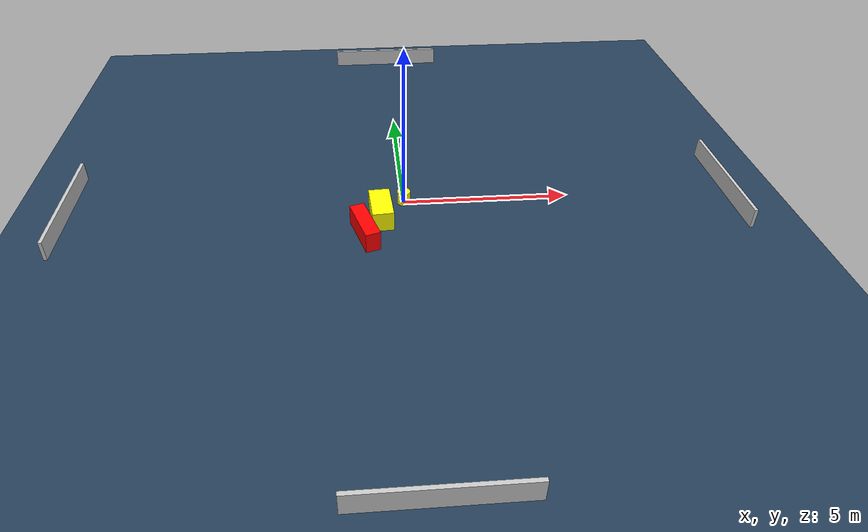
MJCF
<?xml version="1.0" ?>
<mujoco model="generated_environment">
  <option timestep="0.01" integrator="RK4" cone="elliptic"/>
  <default>
    <geom density="1"/>
  </default>
  <asset>
    <texture builtin="gradient" height="3072" name="skybox" rgb1="0.3 0.5 0.7" rgb2="0 0 0" type="skybox" width="512"/>
    <texture builtin="checker" height="300" name="groundplane" rgb1="0.2 0.3 0.4" rgb2="0.1 0.2 0.3" type="2d" width="300"/>
    <material name="groundplane" reflectance="0.2" texrepeat="5 5" texture="groundplane"/>
  </asset>
  <worldbody>
    <light dir="0 0 -1" directional="true" pos="0 0 1.5"/>
    <geom condim="3" friction="0.5 0.005 0.001" material="groundplane" name="floor" pos="0 0 0" size="0 0 0.05" type="plane"/>
    <body name="walls">
      <geom name="wall_1" condim="4" pos="-10.0 0.0 0.3" rgba="0.800000011920929 0.800000011920929 0.800000011920929 1.0" size="0.05 2.0 0.3" type="box"/>
      <geom name="wall_2" condim="4" pos="10.0 0.0 0.3" rgba="0.800000011920929 0.800000011920929 0.800000011920929 1.0" size="0.05 2.0 0.3" type="box"/>
      <geom name="wall_3" condim="4" pos="0.0 -10.0 0.3" rgba="0.800000011920929 0.800000011920929 0.800000011920929 1.0" size="2.0 0.05 0.3" type="box"/>
      <geom name="wall_4" condim="4" pos="0.0 10.0 0.3" rgba="0.800000011920929 0.800000011920929 0.800000011920929 1.0" size="2.0 0.05 0.3" type="box"/>
    </body>
    <body name="robot">
      <joint name="joint_x" type="slide" pos="0 0 0" axis="1 0 0"/>
      <joint name="joint_y" type="slide" pos="0 0 0" axis="0 1 0"/>
      <geom name="robot" type="cylinder" pos="0.0 0.0 0.2" size="0.2 0.2 0.0" mass="5.0" friction="1.0 0.005 0.0001" condim="4" rgba="1.0 1.0 0.0 1.0"/>
    </body>
    <body name="obstacle_1_movable">
      <geom name="obstacle_1_movable" condim="4" pos="-0.7205565410338334 -0.7506007270866462 0.3" euler="0 0 3.4113544792073114" friction="0.0 0.005 0.001" rgba="1.0 1.0 0.0 1.0" size="0.3130262610814085 0.6230755152370646 0.3" type="box" mass="0.1"/>
      <joint type="free"/>
    </body>
    <body name="obstacle_2_static">
      <geom name="obstacle_2_static" condim="4" pos="-1.2202305353725575 -1.5638345149971202 0.3" euler="0 0 196.72089207317387" friction="0.0 0.005 0.001" rgba="1.0 0.0 0.0 1.0" size="0.2184058897498203 0.7361386435172854 0.3" type="box"/>
    </body>
  </worldbody>
  <actuator>
    <motor name="actuator_x" joint="joint_x" gear="1" ctrlrange="-1 1"/>
    <motor name="actuator_y" joint="joint_y" gear="1" ctrlrange="-1 1"/>
  </actuator>
</mujoco>
